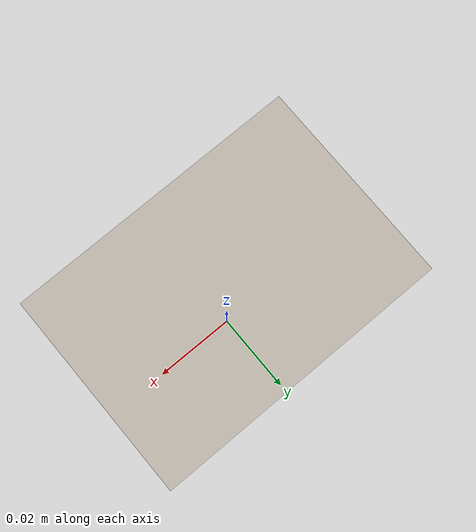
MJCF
<mujoco model="cheezeits">
  <asset>
    <texture file="textures/boxes/cheezeits.png" type="2d" name="tex-cheese" />
    <material name="cheezeits" reflectance="0.7" texrepeat="15 15" texture="tex-cheese" texuniform="true"/>
  </asset>
  <worldbody>
    <body>
      <body name="collision">
        <geom pos="0 0 0" size="0.025 0.0175 0.05" type="box" solimp="0.998 0.998 0.001" solref="0.001 1" density="50" friction="0.95 0.3 0.1"  material="cheezeits" group="1" condim="4"/>
      </body>

      <site rgba="0 0 0 0" size="0.005" pos="0 0 -0.045" name="bottom_site"/>
      <site rgba="0 0 0 0" size="0.005" pos="0 0 0.03" name="top_site"/>
      <site rgba="0 0 0 0" size="0.005" pos="0.06 0.06 0" name="horizontal_radius_site"/>
    </body>
  </worldbody>
</mujoco>
